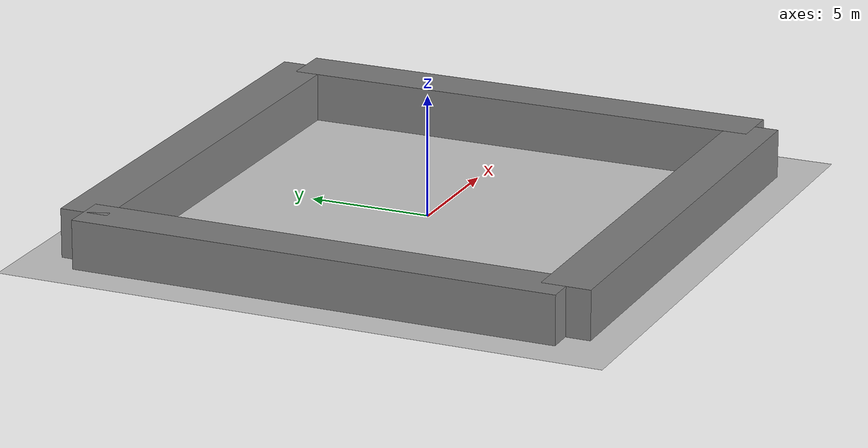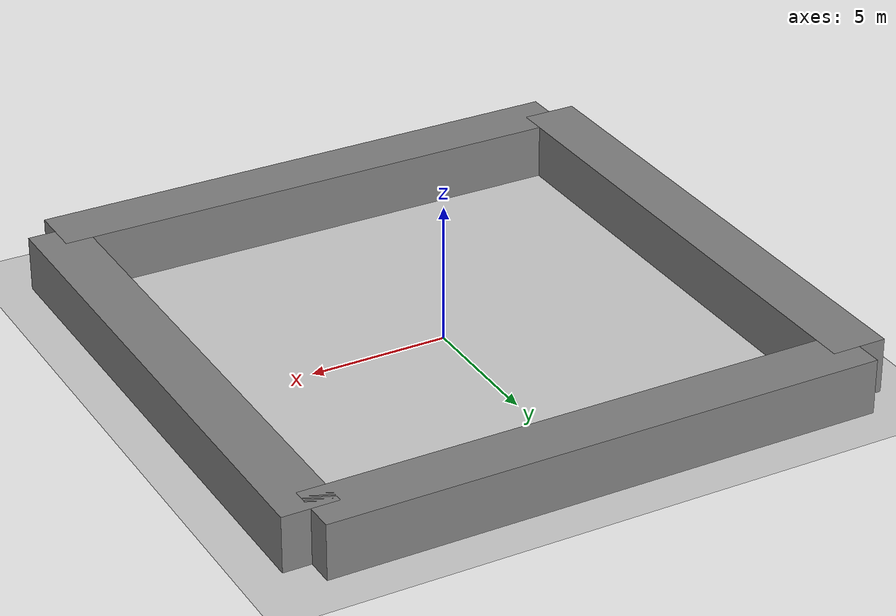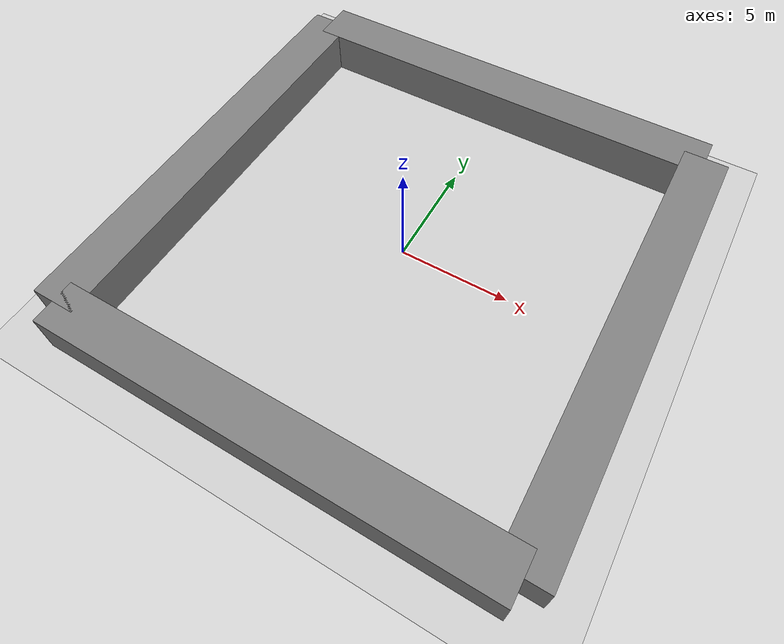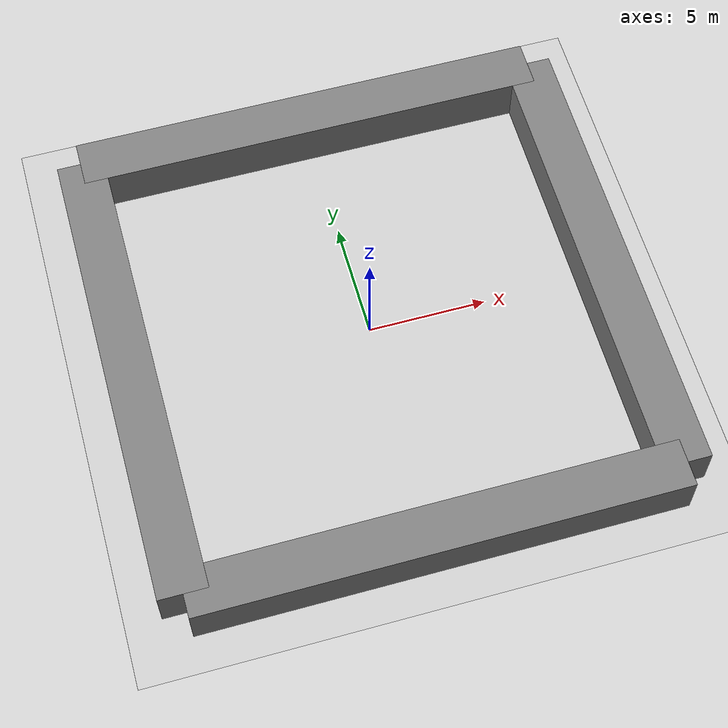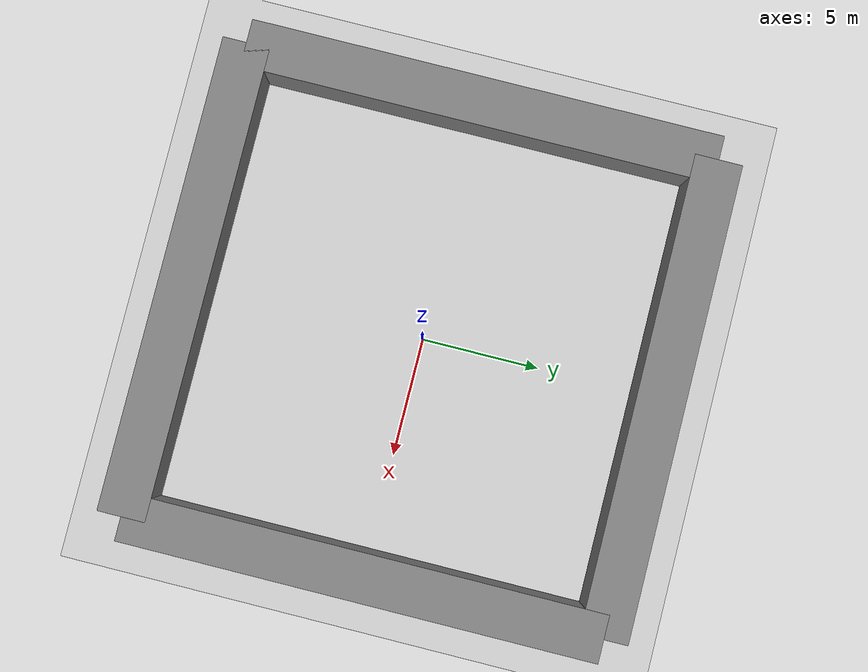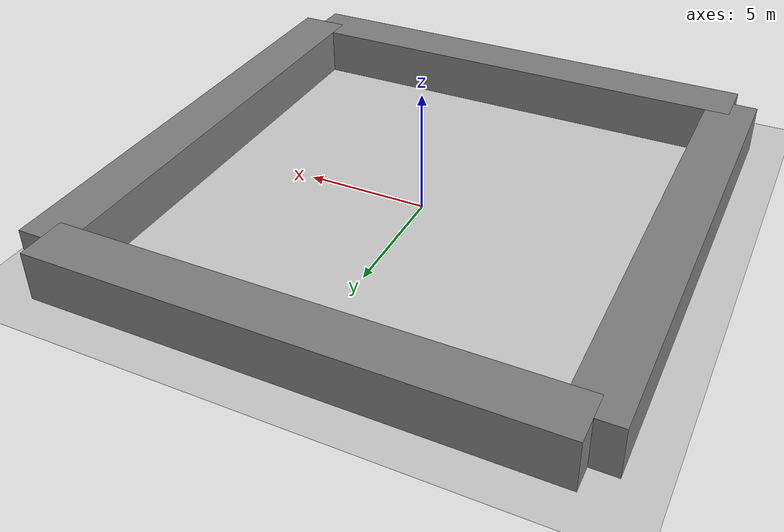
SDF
<sdf version="1.6">
 <world name="default">
  <model name="ground_plane">
   <static>1</static>
   <link name="link">
    <collision name="collision">
     <geometry><plane><normal>0 0 1</normal><size>100 100</size></plane></geometry>
     <surface><friction><ode><mu>100</mu><mu2>50</mu2></ode></friction></surface>
    </collision>
    <visual name="visual">
     <cast_shadows>0</cast_shadows>
     <geometry><plane><normal>0 0 1</normal><size>100 100</size></plane></geometry>
     <material>
      <script><uri>file://media/materials/scripts/gazebo.material</uri><name>Gazebo/Grey</name></script>
     </material>
    </visual>
   </link>
  </model>
  <model name="gray_wall_north">
   <static>1</static>
   <link name="link">
    <collision name="collision"><geometry><box><size>20 2 2</size></box></geometry></collision>
    <visual name="visual">
     <geometry><box><size>20 2 2</size></box></geometry>
     <material>
      <ambient>0.5 0.5 0.5 1</ambient>
      <diffuse>0.5 0.5 0.5 1</diffuse>
      <specular>0 0 0 1</specular>
      <emissive>0 0 0 1</emissive>
     </material>
    </visual>
   </link>
   <pose>0 10 1 0 0 0</pose>
  </model>
  <model name="gray_wall_south">
   <static>1</static>
   <link name="link">
    <collision name="collision"><geometry><box><size>20 2 2</size></box></geometry></collision>
    <visual name="visual">
     <geometry><box><size>20 2 2</size></box></geometry>
     <material>
      <ambient>0.5 0.5 0.5 1</ambient>
      <diffuse>0.5 0.5 0.5 1</diffuse>
      <specular>0 0 0 1</specular>
      <emissive>0 0 0 1</emissive>
     </material>
    </visual>
   </link>
   <pose>0 -10 1 0 0 0</pose>
  </model>
  <model name="gray_wall_east">
   <static>1</static>
   <link name="link">
    <collision name="collision"><geometry><box><size>20 2 2</size></box></geometry></collision>
    <visual name="visual">
     <geometry><box><size>20 2 2</size></box></geometry>
     <material>
      <ambient>0.5 0.5 0.5 1</ambient>
      <diffuse>0.5 0.5 0.5 1</diffuse>
      <specular>0 0 0 1</specular>
      <emissive>0 0 0 1</emissive>
     </material>
    </visual>
   </link>
   <pose>10 0 1 0 0 1.5708</pose>
  </model>
  <model name="gray_wall_west">
   <static>1</static>
   <link name="link">
    <collision name="collision"><geometry><box><size>20 2 2</size></box></geometry></collision>
    <visual name="visual">
     <geometry><box><size>20 2 2</size></box></geometry>
     <material>
      <ambient>0.5 0.5 0.5 1</ambient>
      <diffuse>0.5 0.5 0.5 1</diffuse>
      <specular>0 0 0 1</specular>
      <emissive>0 0 0 1</emissive>
     </material>
    </visual>
   </link>
   <pose>-10 0 1 0 0 1.5708</pose>
  </model>
  <light name="sun" type="directional">
   <pose>0 0 10 0 -0 0</pose>
   <diffuse>0.8 0.8 0.8 1</diffuse>
   <specular>0.2 0.2 0.2 1</specular>
   <attenuation>
    <range>500</range>
    <constant>0.9</constant>
    <linear>0.01</linear>
    <quadratic>0.001</quadratic>
   </attenuation>
   <direction>-0.5 0.1 -0.9</direction>
  </light>
  <gravity>0 0 -9.8</gravity>
  <physics name="default_physics" default="0" type="ode">
   <max_step_size>0.001</max_step_size>
   <real_time_factor>1</real_time_factor>
   <real_time_update_rate>1000</real_time_update_rate>
  </physics>
  <scene><ambient>0.4 0.4 0.4 1</ambient><background>0.7 0.7 0.7 1</background><shadows>1</shadows></scene>
  <audio><device>default</device></audio>
 </world>
</sdf>
